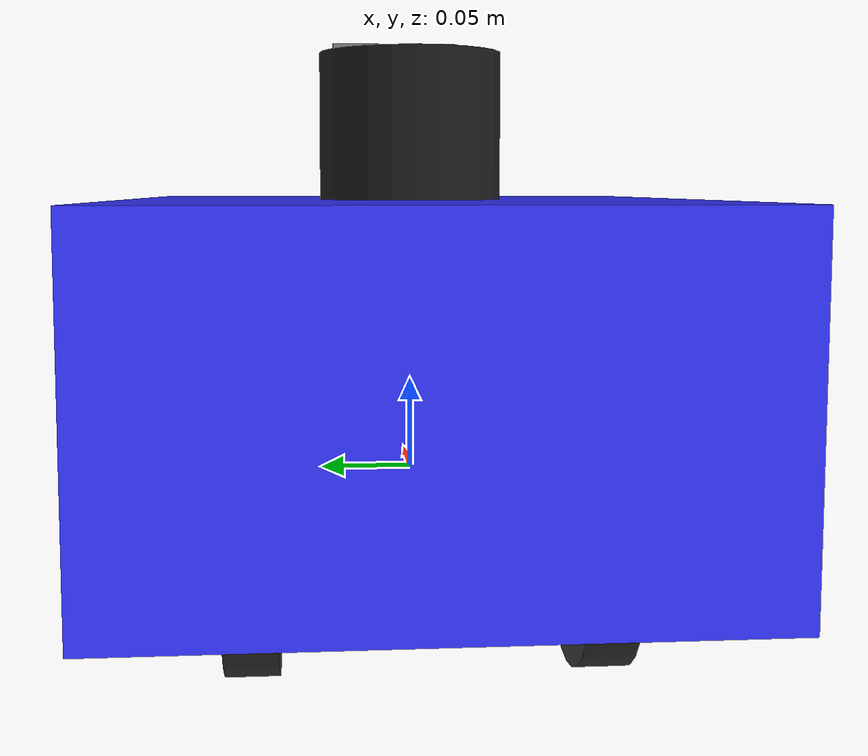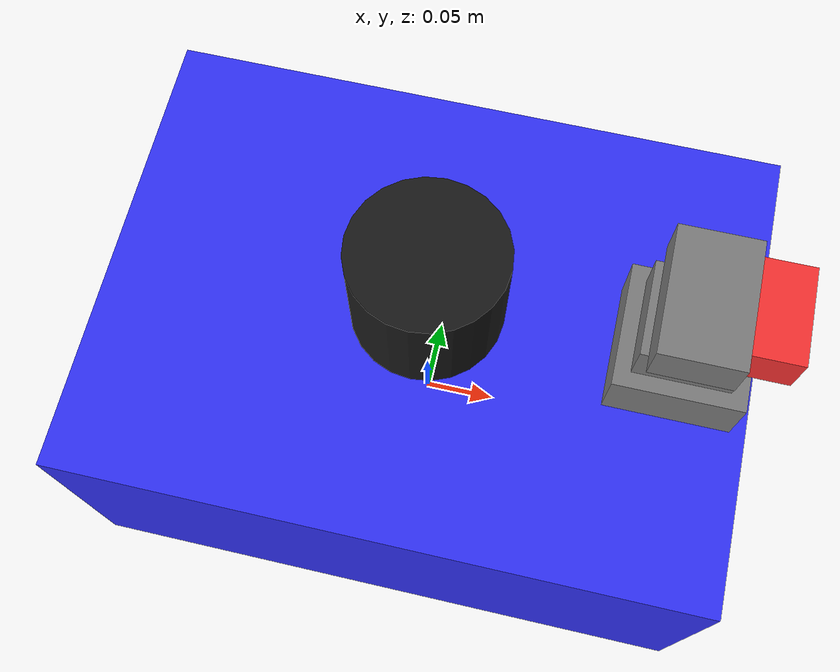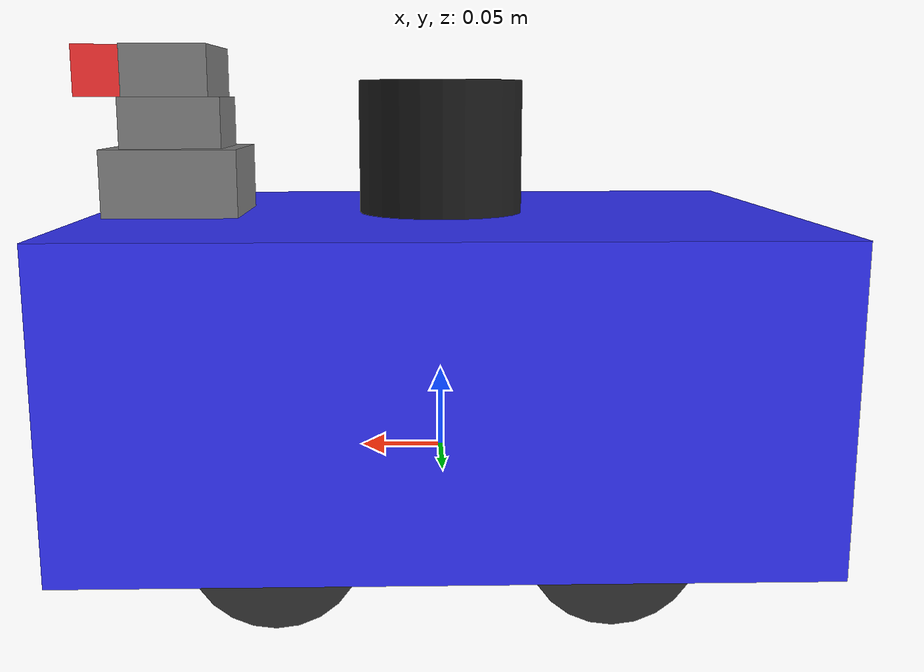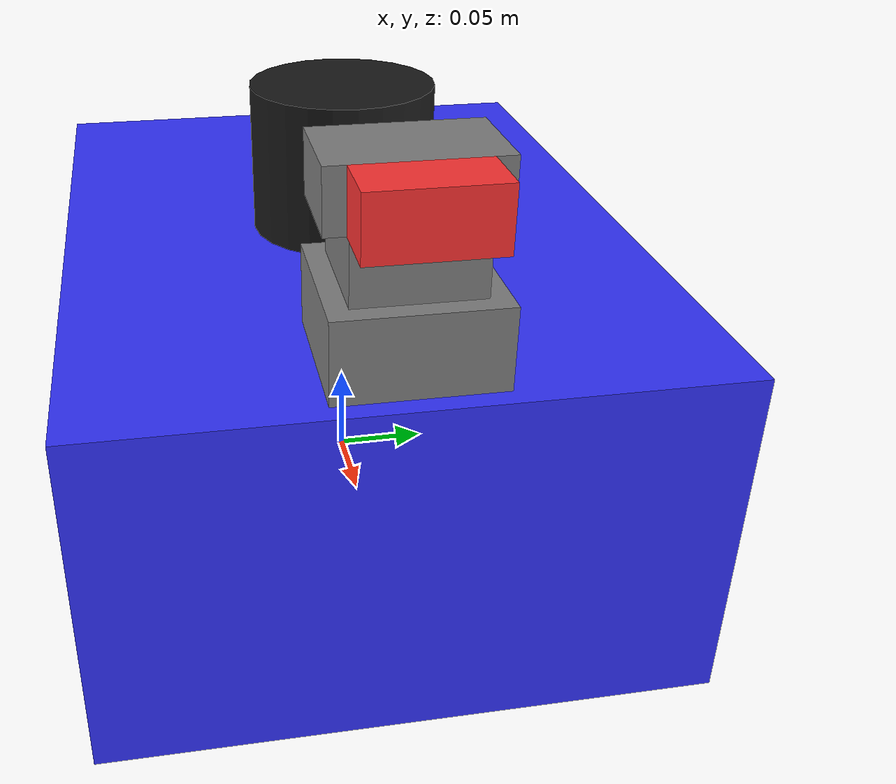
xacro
<?xml version="1.0"?>
<robot xmlns:xacro="http://ros.org/wiki/xacro" name="mentorpi">

  <!-- Import Gazebo plugins -->
  <xacro:include filename="$(find mentorpi_description)/urdf/mentorpi.gazebo" />

  <!-- Constants -->
  <xacro:property name="PI" value="3.1415926535897931"/>

  <!-- Robot properties -->
  <xacro:property name="base_mass" value="2.5" /> <!-- kg -->
  <xacro:property name="base_width" value="0.31" />
  <xacro:property name="base_length" value="0.42" />
  <xacro:property name="base_height" value="0.18" />

  <!-- Wheel properties -->
  <xacro:property name="wheel_mass" value="0.5" /> <!-- kg -->
  <xacro:property name="wheel_radius" value="0.0508" /> <!-- 50.8mm -->
  <xacro:property name="wheel_width" value="0.026" /> <!-- 26mm -->

  <!-- Mecanum wheel offset -->
  <xacro:property name="wheel_separation_x" value="0.194" /> <!-- 194mm between front/rear -->
  <xacro:property name="wheel_separation_y" value="0.169" /> <!-- 169mm between left/right -->

  <!-- Inertial macros -->
  <xacro:macro name="box_inertia" params="m x y z">
    <inertia ixx="${m*(y*y+z*z)/12}" ixy="0" ixz="0"
             iyy="${m*(x*x+z*z)/12}" iyz="0" izz="${m*(x*x+y*y)/12}" />
  </xacro:macro>

  <xacro:macro name="cylinder_inertia" params="m r h">
    <inertia ixx="${m*(3*r*r+h*h)/12}" ixy="0" ixz="0"
             iyy="${m*(3*r*r+h*h)/12}" iyz="0" izz="${m*r*r/2}" />
  </xacro:macro>

  <!-- Base Link -->
  <link name="base_link">
    <visual>
      <origin xyz="0 0 0" rpy="0 0 0"/>
      <geometry>
        <box size="${base_length} ${base_width} ${base_height}"/>
      </geometry>
      <material name="blue">
        <color rgba="0.2 0.2 1.0 1.0"/>
      </material>
    </visual>

    <collision>
      <origin xyz="0 0 0" rpy="0 0 0"/>
      <geometry>
        <box size="${base_length} ${base_width} ${base_height}"/>
      </geometry>
    </collision>

    <inertial>
      <origin xyz="0 0 0" rpy="0 0 0"/>
      <mass value="${base_mass}"/>
      <xacro:box_inertia m="${base_mass}" x="${base_length}" y="${base_width}" z="${base_height}"/>
    </inertial>
  </link>

  <!-- Base Footprint -->
  <link name="base_footprint"/>

  <joint name="base_joint" type="fixed">
    <parent link="base_footprint"/>
    <child link="base_link"/>
    <origin xyz="0.0 0.0 ${wheel_radius + 0.01}" rpy="0 0 0"/>
  </joint>

  <!-- Mecanum Wheels -->
  <xacro:macro name="mecanum_wheel" params="prefix x_reflect y_reflect">
    <link name="${prefix}_wheel_link">
      <visual>
        <origin xyz="0 0 0" rpy="${PI/2} 0 0"/>
        <geometry>
          <cylinder radius="${wheel_radius}" length="${wheel_width}"/>
        </geometry>
        <material name="dark_grey">
          <color rgba="0.2 0.2 0.2 1.0"/>
        </material>
      </visual>

      <collision>
        <origin xyz="0 0 0" rpy="${PI/2} 0 0"/>
        <geometry>
          <cylinder radius="${wheel_radius}" length="${wheel_width}"/>
        </geometry>
      </collision>

      <inertial>
        <origin xyz="0 0 0" rpy="${PI/2} 0 0"/>
        <mass value="${wheel_mass}"/>
        <xacro:cylinder_inertia m="${wheel_mass}" r="${wheel_radius}" h="${wheel_width}"/>
      </inertial>
    </link>

    <joint name="${prefix}_wheel_joint" type="continuous">
      <parent link="base_link"/>
      <child link="${prefix}_wheel_link"/>
      <origin xyz="${x_reflect*wheel_separation_x/2} ${y_reflect*wheel_separation_y/2} ${-base_height/2}"
              rpy="0 0 0"/>
      <axis xyz="0 1 0"/>
    </joint>
  </xacro:macro>

  <!-- Create all four mecanum wheels -->
  <xacro:mecanum_wheel prefix="front_left" x_reflect="1" y_reflect="1"/>
  <xacro:mecanum_wheel prefix="front_right" x_reflect="1" y_reflect="-1"/>
  <xacro:mecanum_wheel prefix="rear_left" x_reflect="-1" y_reflect="1"/>
  <xacro:mecanum_wheel prefix="rear_right" x_reflect="-1" y_reflect="-1"/>

  <!-- LIDAR Mount -->
  <link name="lidar_link">
    <visual>
      <origin xyz="0 0 0" rpy="0 0 0"/>
      <geometry>
        <cylinder radius="0.05" length="0.08"/>
      </geometry>
      <material name="black">
        <color rgba="0.1 0.1 0.1 1.0"/>
      </material>
    </visual>

    <collision>
      <origin xyz="0 0 0" rpy="0 0 0"/>
      <geometry>
        <cylinder radius="0.05" length="0.08"/>
      </geometry>
    </collision>

    <inertial>
      <origin xyz="0 0 0" rpy="0 0 0"/>
      <mass value="0.2"/>
      <xacro:cylinder_inertia m="0.2" r="0.05" h="0.08"/>
    </inertial>
  </link>

  <joint name="lidar_joint" type="fixed">
    <parent link="base_link"/>
    <child link="lidar_link"/>
    <origin xyz="0.0 0.0 ${base_height/2 + 0.04}" rpy="0 0 0"/>
  </joint>

  <!-- Camera Gimbal Base -->
  <link name="camera_gimbal_base">
    <visual>
      <origin xyz="0 0 0" rpy="0 0 0"/>
      <geometry>
        <box size="0.08 0.08 0.04"/>
      </geometry>
      <material name="grey">
        <color rgba="0.5 0.5 0.5 1.0"/>
      </material>
    </visual>

    <collision>
      <origin xyz="0 0 0" rpy="0 0 0"/>
      <geometry>
        <box size="0.08 0.08 0.04"/>
      </geometry>
    </collision>

    <inertial>
      <origin xyz="0 0 0" rpy="0 0 0"/>
      <mass value="0.1"/>
      <xacro:box_inertia m="0.1" x="0.08" y="0.08" z="0.04"/>
    </inertial>
  </link>

  <joint name="camera_gimbal_base_joint" type="fixed">
    <parent link="base_link"/>
    <child link="camera_gimbal_base"/>
    <origin xyz="${base_length/2 - 0.05} 0.0 ${base_height/2 + 0.02}" rpy="0 0 0"/>
  </joint>

  <!-- Camera Gimbal Pan -->
  <link name="camera_gimbal_pan">
    <visual>
      <origin xyz="0 0 0" rpy="0 0 0"/>
      <geometry>
        <box size="0.06 0.06 0.03"/>
      </geometry>
      <material name="grey">
        <color rgba="0.5 0.5 0.5 1.0"/>
      </material>
    </visual>

    <collision>
      <origin xyz="0 0 0" rpy="0 0 0"/>
      <geometry>
        <box size="0.06 0.06 0.03"/>
      </geometry>
    </collision>

    <inertial>
      <origin xyz="0 0 0" rpy="0 0 0"/>
      <mass value="0.05"/>
      <xacro:box_inertia m="0.05" x="0.06" y="0.06" z="0.03"/>
    </inertial>
  </link>

  <joint name="camera_gimbal_pan_joint" type="revolute">
    <parent link="camera_gimbal_base"/>
    <child link="camera_gimbal_pan"/>
    <origin xyz="0 0 0.035" rpy="0 0 0"/>
    <axis xyz="0 0 1"/>
    <limit lower="-1.57" upper="1.57" effort="10" velocity="1.0"/>
  </joint>

  <!-- Camera Gimbal Tilt -->
  <link name="camera_gimbal_tilt">
    <visual>
      <origin xyz="0 0 0" rpy="0 0 0"/>
      <geometry>
        <box size="0.05 0.08 0.03"/>
      </geometry>
      <material name="grey">
        <color rgba="0.5 0.5 0.5 1.0"/>
      </material>
    </visual>

    <collision>
      <origin xyz="0 0 0" rpy="0 0 0"/>
      <geometry>
        <box size="0.05 0.08 0.03"/>
      </geometry>
    </collision>

    <inertial>
      <origin xyz="0 0 0" rpy="0 0 0"/>
      <mass value="0.05"/>
      <xacro:box_inertia m="0.05" x="0.05" y="0.08" z="0.03"/>
    </inertial>
  </link>

  <joint name="camera_gimbal_tilt_joint" type="revolute">
    <parent link="camera_gimbal_pan"/>
    <child link="camera_gimbal_tilt"/>
    <origin xyz="0 0 0.03" rpy="0 0 0"/>
    <axis xyz="0 1 0"/>
    <limit lower="-0.785" upper="0.785" effort="10" velocity="1.0"/>
  </joint>

  <!-- Camera -->
  <link name="camera_link">
    <visual>
      <origin xyz="0 0 0" rpy="0 0 0"/>
      <geometry>
        <box size="0.03 0.06 0.03"/>
      </geometry>
      <material name="red">
        <color rgba="1.0 0.2 0.2 1.0"/>
      </material>
    </visual>

    <collision>
      <origin xyz="0 0 0" rpy="0 0 0"/>
      <geometry>
        <box size="0.03 0.06 0.03"/>
      </geometry>
    </collision>

    <inertial>
      <origin xyz="0 0 0" rpy="0 0 0"/>
      <mass value="0.02"/>
      <xacro:box_inertia m="0.02" x="0.03" y="0.06" z="0.03"/>
    </inertial>
  </link>

  <joint name="camera_joint" type="fixed">
    <parent link="camera_gimbal_tilt"/>
    <child link="camera_link"/>
    <origin xyz="0.04 0 0" rpy="0 0 0"/>
  </joint>

  <!-- Camera Optical Frame -->
  <link name="camera_optical_link"/>

  <joint name="camera_optical_joint" type="fixed">
    <parent link="camera_link"/>
    <child link="camera_optical_link"/>
    <origin xyz="0 0 0" rpy="-1.5708 0 -1.5708"/>
  </joint>

  <!-- IMU -->
  <link name="imu_link">
    <visual>
      <origin xyz="0 0 0" rpy="0 0 0"/>
      <geometry>
        <box size="0.02 0.02 0.01"/>
      </geometry>
      <material name="green">
        <color rgba="0.2 1.0 0.2 1.0"/>
      </material>
    </visual>

    <collision>
      <origin xyz="0 0 0" rpy="0 0 0"/>
      <geometry>
        <box size="0.02 0.02 0.01"/>
      </geometry>
    </collision>

    <inertial>
      <origin xyz="0 0 0" rpy="0 0 0"/>
      <mass value="0.001"/>
      <xacro:box_inertia m="0.001" x="0.02" y="0.02" z="0.01"/>
    </inertial>
  </link>

  <joint name="imu_joint" type="fixed">
    <parent link="base_link"/>
    <child link="imu_link"/>
    <origin xyz="0 0 0" rpy="0 0 0"/>
  </joint>

</robot>
